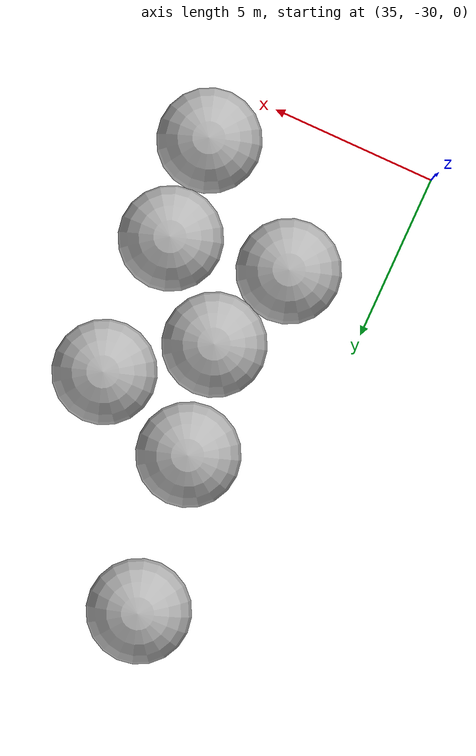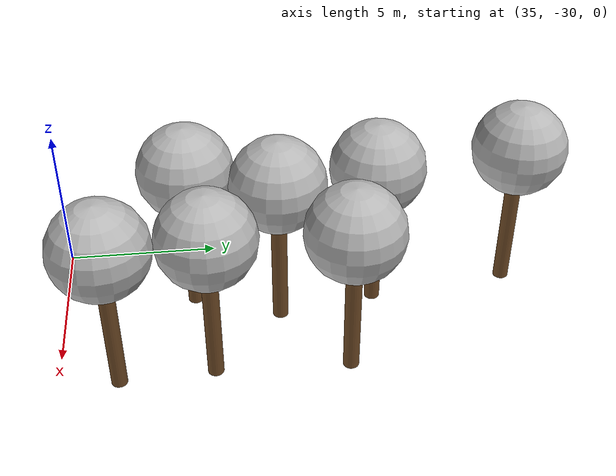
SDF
<sdf version="1.7">
 <world name="default">
  <model name="tree_red_0">
   <static>1</static>
   <link name="link">
    <pose>0 0 0.1 0 -0 0</pose>
    <inertial>
     <mass>666</mass>
     <inertia>
      <ixx>0.0861167</ixx>
      <ixy>0</ixy>
      <ixz>0</ixz>
      <iyy>0.0861167</iyy>
      <iyz>0</iyz>
      <izz>0.0861167</izz>
     </inertia>
    </inertial>
    <collision name="collision_trunk">
     <pose>0 0 2 0 -0 0</pose>
     <geometry><cylinder><radius>0.25</radius><length>4</length></cylinder></geometry>
     <surface>
      <contact>
       <poissons_ratio>0.347</poissons_ratio>
       <elastic_modulus>8.8e+09</elastic_modulus>
       <ode><kp>100000</kp><kd>100</kd><max_vel>100</max_vel><min_depth>0.001</min_depth></ode>
      </contact>
      <friction>
       <torsional>
        <coefficient>1</coefficient>
        <use_patch_radius>0</use_patch_radius>
        <surface_radius>0.01</surface_radius>
       </torsional>
      </friction>
     </surface>
    </collision>
    <collision name="collision_treetop">
     <pose>0 0 5.2 0 -0 0</pose>
     <geometry><sphere><radius>1.5</radius></sphere></geometry>
     <surface>
      <contact>
       <poissons_ratio>0.347</poissons_ratio>
       <elastic_modulus>8.8e+09</elastic_modulus>
       <ode><kp>100000</kp><kd>100</kd><max_vel>100</max_vel><min_depth>0.001</min_depth></ode>
      </contact>
      <friction>
       <torsional>
        <coefficient>1</coefficient>
        <use_patch_radius>0</use_patch_radius>
        <surface_radius>0.01</surface_radius>
       </torsional>
      </friction>
     </surface>
    </collision>
    <visual name="trunk">
     <pose>0 0 2 0 -0 0</pose>
     <geometry><cylinder><radius>0.25</radius><length>4</length></cylinder></geometry>
     <material>
      <script>
       <uri>model://MRS_tree_simples_fire/scripts</uri>
       <uri>model://MRS_tree_simples_fire/materials/textures</uri>
       <name>MRS_tree_simples_fire/Trunk</name>
      </script>
     </material>
    </visual>
    <visual name="treetop">
     <pose>0 0 5.2 0 -0 0</pose>
     <geometry><sphere><radius>1.5</radius></sphere></geometry>
     <material>
      <script>
       <uri>model://MRS_tree_simples_fire/scripts</uri>
       <uri>model://MRS_tree_simples_fire/materials/textures</uri>
       <name>MRS_tree_simples_fire/Treetop</name>
      </script>
     </material>
    </visual>
   </link>
   <pose>41.2461 -20.9723 0 0 -0 0</pose>
  </model>
  <model name="tree_red_2">
   <static>1</static>
   <link name="link">
    <pose>0 0 0.1 0 -0 0</pose>
    <inertial>
     <mass>666</mass>
     <inertia>
      <ixx>0.0861167</ixx>
      <ixy>0</ixy>
      <ixz>0</ixz>
      <iyy>0.0861167</iyy>
      <iyz>0</iyz>
      <izz>0.0861167</izz>
     </inertia>
    </inertial>
    <collision name="collision_trunk">
     <pose>0 0 2 0 -0 0</pose>
     <geometry><cylinder><radius>0.25</radius><length>4</length></cylinder></geometry>
     <surface>
      <contact>
       <poissons_ratio>0.347</poissons_ratio>
       <elastic_modulus>8.8e+09</elastic_modulus>
       <ode><kp>100000</kp><kd>100</kd><max_vel>100</max_vel><min_depth>0.001</min_depth></ode>
      </contact>
      <friction>
       <torsional>
        <coefficient>1</coefficient>
        <use_patch_radius>0</use_patch_radius>
        <surface_radius>0.01</surface_radius>
       </torsional>
      </friction>
     </surface>
    </collision>
    <collision name="collision_treetop">
     <pose>0 0 5.2 0 -0 0</pose>
     <geometry><sphere><radius>1.5</radius></sphere></geometry>
     <surface>
      <contact>
       <poissons_ratio>0.347</poissons_ratio>
       <elastic_modulus>8.8e+09</elastic_modulus>
       <ode><kp>100000</kp><kd>100</kd><max_vel>100</max_vel><min_depth>0.001</min_depth></ode>
      </contact>
      <friction>
       <torsional>
        <coefficient>1</coefficient>
        <use_patch_radius>0</use_patch_radius>
        <surface_radius>0.01</surface_radius>
       </torsional>
      </friction>
     </surface>
    </collision>
    <visual name="trunk">
     <pose>0 0 2 0 -0 0</pose>
     <geometry><cylinder><radius>0.25</radius><length>4</length></cylinder></geometry>
     <material>
      <script>
       <uri>model://MRS_tree_simples_fire/scripts</uri>
       <uri>model://MRS_tree_simples_fire/materials/textures</uri>
       <name>MRS_tree_simples_fire/Trunk</name>
      </script>
     </material>
    </visual>
    <visual name="treetop">
     <pose>0 0 5.2 0 -0 0</pose>
     <geometry><sphere><radius>1.5</radius></sphere></geometry>
     <material>
      <script>
       <uri>model://MRS_tree_simples_fire/scripts</uri>
       <uri>model://MRS_tree_simples_fire/materials/textures</uri>
       <name>MRS_tree_simples_fire/Treetop</name>
      </script>
     </material>
    </visual>
   </link>
   <pose>38.7483 -22.9542 0.02686 0 -0 0</pose>
  </model>
  <model name="tree_red_3">
   <static>1</static>
   <link name="link">
    <pose>0 0 0.1 0 -0 0</pose>
    <inertial>
     <mass>666</mass>
     <inertia>
      <ixx>0.0861167</ixx>
      <ixy>0</ixy>
      <ixz>0</ixz>
      <iyy>0.0861167</iyy>
      <iyz>0</iyz>
      <izz>0.0861167</izz>
     </inertia>
    </inertial>
    <collision name="collision_trunk">
     <pose>0 0 2 0 -0 0</pose>
     <geometry><cylinder><radius>0.25</radius><length>4</length></cylinder></geometry>
     <surface>
      <contact>
       <poissons_ratio>0.347</poissons_ratio>
       <elastic_modulus>8.8e+09</elastic_modulus>
       <ode><kp>100000</kp><kd>100</kd><max_vel>100</max_vel><min_depth>0.001</min_depth></ode>
      </contact>
      <friction>
       <torsional>
        <coefficient>1</coefficient>
        <use_patch_radius>0</use_patch_radius>
        <surface_radius>0.01</surface_radius>
       </torsional>
      </friction>
     </surface>
    </collision>
    <collision name="collision_treetop">
     <pose>0 0 5.2 0 -0 0</pose>
     <geometry><sphere><radius>1.5</radius></sphere></geometry>
     <surface>
      <contact>
       <poissons_ratio>0.347</poissons_ratio>
       <elastic_modulus>8.8e+09</elastic_modulus>
       <ode><kp>100000</kp><kd>100</kd><max_vel>100</max_vel><min_depth>0.001</min_depth></ode>
      </contact>
      <friction>
       <torsional>
        <coefficient>1</coefficient>
        <use_patch_radius>0</use_patch_radius>
        <surface_radius>0.01</surface_radius>
       </torsional>
      </friction>
     </surface>
    </collision>
    <visual name="trunk">
     <pose>0 0 2 0 -0 0</pose>
     <geometry><cylinder><radius>0.25</radius><length>4</length></cylinder></geometry>
     <material>
      <script>
       <uri>model://MRS_tree_simples_fire/scripts</uri>
       <uri>model://MRS_tree_simples_fire/materials/textures</uri>
       <name>MRS_tree_simples_fire/Trunk</name>
      </script>
     </material>
    </visual>
    <visual name="treetop">
     <pose>0 0 5.2 0 -0 0</pose>
     <geometry><sphere><radius>1.5</radius></sphere></geometry>
     <material>
      <script>
       <uri>model://MRS_tree_simples_fire/scripts</uri>
       <uri>model://MRS_tree_simples_fire/materials/textures</uri>
       <name>MRS_tree_simples_fire/Treetop</name>
      </script>
     </material>
    </visual>
   </link>
   <pose>41.1036 -25.1689 0 0 -0 0</pose>
  </model>
  <model name="tree_yellow_4">
   <static>1</static>
   <link name="link">
    <pose>0 0 0.1 0 -0 0</pose>
    <inertial>
     <mass>666</mass>
     <inertia>
      <ixx>0.0861167</ixx>
      <ixy>0</ixy>
      <ixz>0</ixz>
      <iyy>0.0861167</iyy>
      <iyz>0</iyz>
      <izz>0.0861167</izz>
     </inertia>
    </inertial>
    <collision name="collision_trunk">
     <pose>0 0 2 0 -0 0</pose>
     <geometry><cylinder><radius>0.25</radius><length>4</length></cylinder></geometry>
     <surface>
      <contact>
       <poissons_ratio>0.347</poissons_ratio>
       <elastic_modulus>8.8e+09</elastic_modulus>
       <ode><kp>100000</kp><kd>100</kd><max_vel>100</max_vel><min_depth>0.001</min_depth></ode>
      </contact>
      <friction>
       <torsional>
        <coefficient>1</coefficient>
        <use_patch_radius>0</use_patch_radius>
        <surface_radius>0.01</surface_radius>
       </torsional>
      </friction>
     </surface>
    </collision>
    <collision name="collision_treetop">
     <pose>0 0 5.2 0 -0 0</pose>
     <geometry><sphere><radius>1.5</radius></sphere></geometry>
     <surface>
      <contact>
       <poissons_ratio>0.347</poissons_ratio>
       <elastic_modulus>8.8e+09</elastic_modulus>
       <ode><kp>100000</kp><kd>100</kd><max_vel>100</max_vel><min_depth>0.001</min_depth></ode>
      </contact>
      <friction>
       <torsional>
        <coefficient>1</coefficient>
        <use_patch_radius>0</use_patch_radius>
        <surface_radius>0.01</surface_radius>
       </torsional>
      </friction>
     </surface>
    </collision>
    <visual name="trunk">
     <pose>0 0 2 0 -0 0</pose>
     <geometry><cylinder><radius>0.25</radius><length>4</length></cylinder></geometry>
     <material>
      <script>
       <uri>model://MRS_tree_simples_close/scripts</uri>
       <uri>model://MRS_tree_simples_close/materials/textures</uri>
       <name>MRS_tree_simples_close/Trunk</name>
      </script>
     </material>
    </visual>
    <visual name="treetop">
     <pose>0 0 5.2 0 -0 0</pose>
     <geometry><sphere><radius>1.5</radius></sphere></geometry>
     <material>
      <script>
       <uri>model://MRS_tree_simples_close/scripts</uri>
       <uri>model://MRS_tree_simples_close/materials/textures</uri>
       <name>MRS_tree_simples_close/Treetop</name>
      </script>
     </material>
    </visual>
   </link>
   <pose>38.1334 -19.8306 0 0 -0 0</pose>
  </model>
  <model name="tree_yellow_5">
   <static>1</static>
   <link name="link">
    <pose>0 0 0.1 0 -0 0</pose>
    <inertial>
     <mass>666</mass>
     <inertia>
      <ixx>0.0861167</ixx>
      <ixy>0</ixy>
      <ixz>0</ixz>
      <iyy>0.0861167</iyy>
      <iyz>0</iyz>
      <izz>0.0861167</izz>
     </inertia>
    </inertial>
    <collision name="collision_trunk">
     <pose>0 0 2 0 -0 0</pose>
     <geometry><cylinder><radius>0.25</radius><length>4</length></cylinder></geometry>
     <surface>
      <contact>
       <poissons_ratio>0.347</poissons_ratio>
       <elastic_modulus>8.8e+09</elastic_modulus>
       <ode><kp>100000</kp><kd>100</kd><max_vel>100</max_vel><min_depth>0.001</min_depth></ode>
      </contact>
      <friction>
       <torsional>
        <coefficient>1</coefficient>
        <use_patch_radius>0</use_patch_radius>
        <surface_radius>0.01</surface_radius>
       </torsional>
      </friction>
     </surface>
    </collision>
    <collision name="collision_treetop">
     <pose>0 0 5.2 0 -0 0</pose>
     <geometry><sphere><radius>1.5</radius></sphere></geometry>
     <surface>
      <contact>
       <poissons_ratio>0.347</poissons_ratio>
       <elastic_modulus>8.8e+09</elastic_modulus>
       <ode><kp>100000</kp><kd>100</kd><max_vel>100</max_vel><min_depth>0.001</min_depth></ode>
      </contact>
      <friction>
       <torsional>
        <coefficient>1</coefficient>
        <use_patch_radius>0</use_patch_radius>
        <surface_radius>0.01</surface_radius>
       </torsional>
      </friction>
     </surface>
    </collision>
    <visual name="trunk">
     <pose>0 0 2 0 -0 0</pose>
     <geometry><cylinder><radius>0.25</radius><length>4</length></cylinder></geometry>
     <material>
      <script>
       <uri>model://MRS_tree_simples_close/scripts</uri>
       <uri>model://MRS_tree_simples_close/materials/textures</uri>
       <name>MRS_tree_simples_close/Trunk</name>
      </script>
     </material>
    </visual>
    <visual name="treetop">
     <pose>0 0 5.2 0 -0 0</pose>
     <geometry><sphere><radius>1.5</radius></sphere></geometry>
     <material>
      <script>
       <uri>model://MRS_tree_simples_close/scripts</uri>
       <uri>model://MRS_tree_simples_close/materials/textures</uri>
       <name>MRS_tree_simples_close/Treetop</name>
      </script>
     </material>
    </visual>
   </link>
   <pose>41.2566 -28.1254 0 0 -0 0</pose>
  </model>
  <model name="tree_yellow_6">
   <static>1</static>
   <link name="link">
    <pose>0 0 0.1 0 -0 0</pose>
    <inertial>
     <mass>666</mass>
     <inertia>
      <ixx>0.0861167</ixx>
      <ixy>0</ixy>
      <ixz>0</ixz>
      <iyy>0.0861167</iyy>
      <iyz>0</iyz>
      <izz>0.0861167</izz>
     </inertia>
    </inertial>
    <collision name="collision_trunk">
     <pose>0 0 2 0 -0 0</pose>
     <geometry><cylinder><radius>0.25</radius><length>4</length></cylinder></geometry>
     <surface>
      <contact>
       <poissons_ratio>0.347</poissons_ratio>
       <elastic_modulus>8.8e+09</elastic_modulus>
       <ode><kp>100000</kp><kd>100</kd><max_vel>100</max_vel><min_depth>0.001</min_depth></ode>
      </contact>
      <friction>
       <torsional>
        <coefficient>1</coefficient>
        <use_patch_radius>0</use_patch_radius>
        <surface_radius>0.01</surface_radius>
       </torsional>
      </friction>
     </surface>
    </collision>
    <collision name="collision_treetop">
     <pose>0 0 5.2 0 -0 0</pose>
     <geometry><sphere><radius>1.5</radius></sphere></geometry>
     <surface>
      <contact>
       <poissons_ratio>0.347</poissons_ratio>
       <elastic_modulus>8.8e+09</elastic_modulus>
       <ode><kp>100000</kp><kd>100</kd><max_vel>100</max_vel><min_depth>0.001</min_depth></ode>
      </contact>
      <friction>
       <torsional>
        <coefficient>1</coefficient>
        <use_patch_radius>0</use_patch_radius>
        <surface_radius>0.01</surface_radius>
       </torsional>
      </friction>
     </surface>
    </collision>
    <visual name="trunk">
     <pose>0 0 2 0 -0 0</pose>
     <geometry><cylinder><radius>0.25</radius><length>4</length></cylinder></geometry>
     <material>
      <script>
       <uri>model://MRS_tree_simples_close/scripts</uri>
       <uri>model://MRS_tree_simples_close/materials/textures</uri>
       <name>MRS_tree_simples_close/Trunk</name>
      </script>
     </material>
    </visual>
    <visual name="treetop">
     <pose>0 0 5.2 0 -0 0</pose>
     <geometry><sphere><radius>1.5</radius></sphere></geometry>
     <material>
      <script>
       <uri>model://MRS_tree_simples_close/scripts</uri>
       <uri>model://MRS_tree_simples_close/materials/textures</uri>
       <name>MRS_tree_simples_close/Treetop</name>
      </script>
     </material>
    </visual>
   </link>
   <pose>37.701 -25.7021 0 0 -0 0</pose>
  </model>
  <model name="tree_green_7">
   <static>1</static>
   <link name="link">
    <pose>0 0 0.1 0 -0 0</pose>
    <inertial>
     <mass>666</mass>
     <inertia>
      <ixx>0.0861167</ixx>
      <ixy>0</ixy>
      <ixz>0</ixz>
      <iyy>0.0861167</iyy>
      <iyz>0</iyz>
      <izz>0.0861167</izz>
     </inertia>
    </inertial>
    <collision name="collision_trunk">
     <pose>0 0 2 0 -0 0</pose>
     <geometry><cylinder><radius>0.25</radius><length>4</length></cylinder></geometry>
     <surface>
      <contact>
       <poissons_ratio>0.347</poissons_ratio>
       <elastic_modulus>8.8e+09</elastic_modulus>
       <ode><kp>100000</kp><kd>100</kd><max_vel>100</max_vel><min_depth>0.001</min_depth></ode>
      </contact>
      <friction>
       <torsional>
        <coefficient>1</coefficient>
        <use_patch_radius>0</use_patch_radius>
        <surface_radius>0.01</surface_radius>
       </torsional>
      </friction>
     </surface>
    </collision>
    <collision name="collision_treetop">
     <pose>0 0 5.2 0 -0 0</pose>
     <geometry><sphere><radius>1.5</radius></sphere></geometry>
     <surface>
      <contact>
       <poissons_ratio>0.347</poissons_ratio>
       <elastic_modulus>8.8e+09</elastic_modulus>
       <ode><kp>100000</kp><kd>100</kd><max_vel>100</max_vel><min_depth>0.001</min_depth></ode>
      </contact>
      <friction>
       <torsional>
        <coefficient>1</coefficient>
        <use_patch_radius>0</use_patch_radius>
        <surface_radius>0.01</surface_radius>
       </torsional>
      </friction>
     </surface>
    </collision>
    <visual name="trunk">
     <pose>0 0 2 0 -0 0</pose>
     <geometry><cylinder><radius>0.25</radius><length>4</length></cylinder></geometry>
     <material>
      <script>
       <uri>model://MRS_tree_simple/scripts</uri>
       <uri>model://MRS_tree_simple/materials/textures</uri>
       <name>MRS_tree_simple/Trunk</name>
      </script>
     </material>
    </visual>
    <visual name="treetop">
     <pose>0 0 5.2 0 -0 0</pose>
     <geometry><sphere><radius>1.5</radius></sphere></geometry>
     <material>
      <script>
       <uri>model://MRS_tree_simple/scripts</uri>
       <uri>model://MRS_tree_simple/materials/textures</uri>
       <name>MRS_tree_simple/Treetop</name>
      </script>
     </material>
    </visual>
   </link>
   <pose>37.576 -15.2417 0 0 -0 0</pose>
  </model>
 </world>
</sdf>
